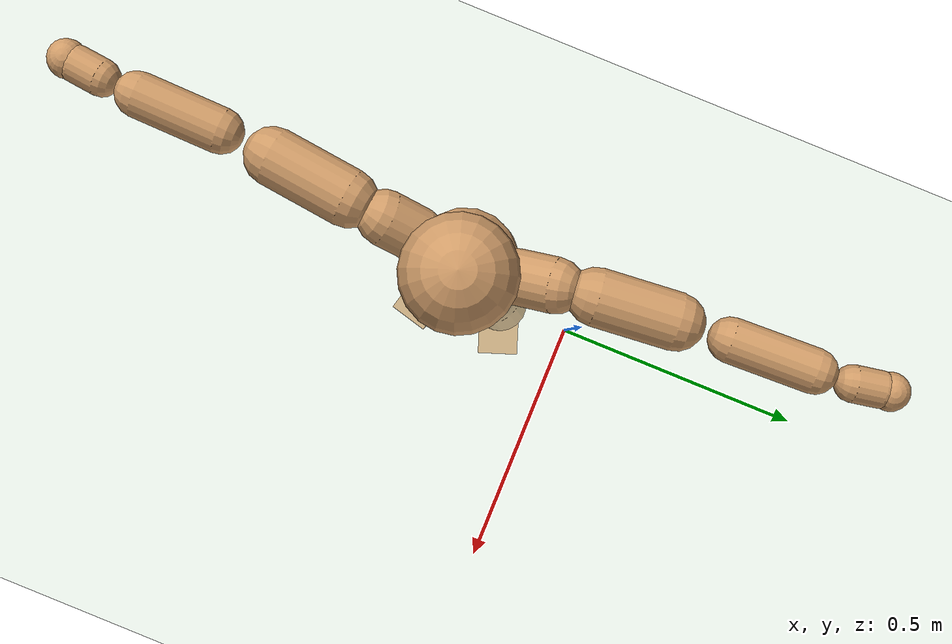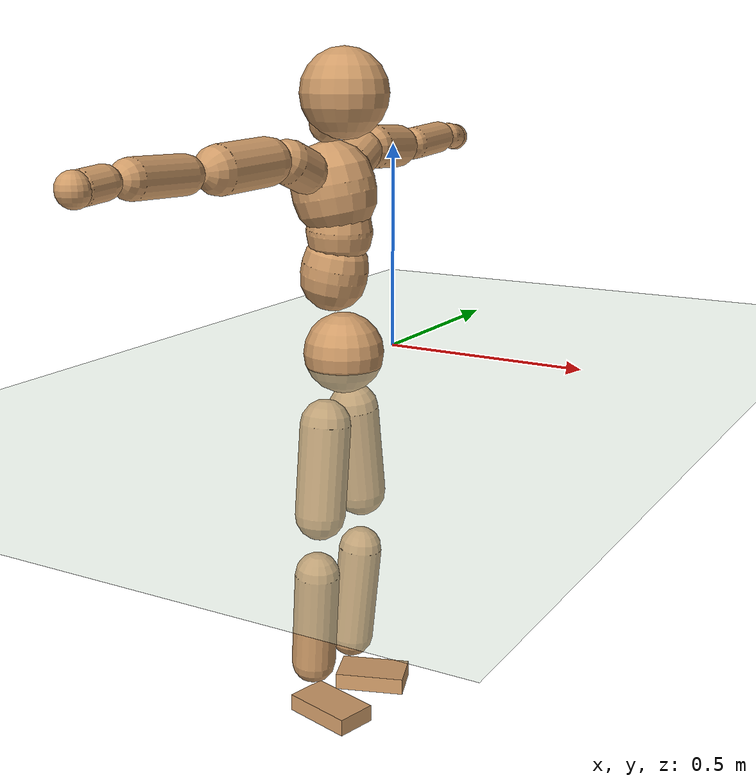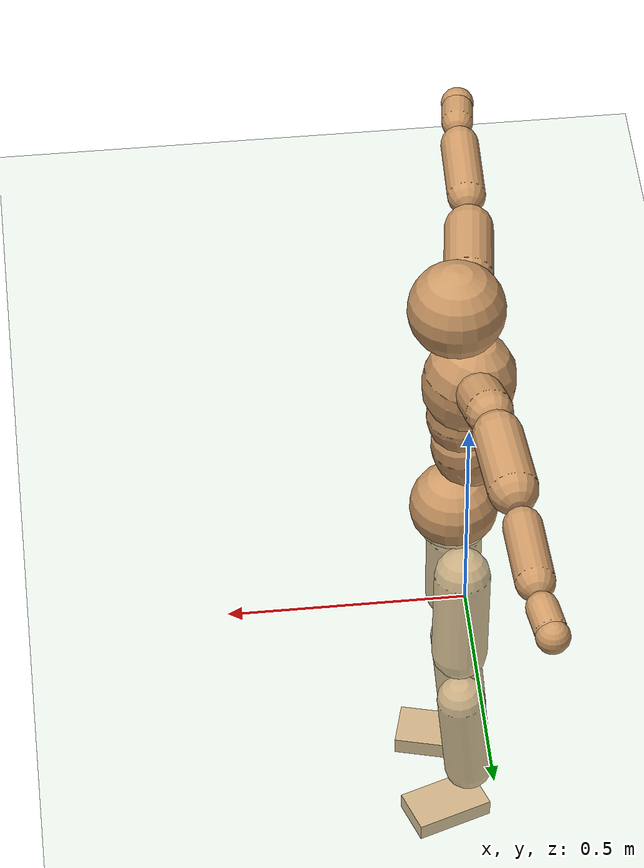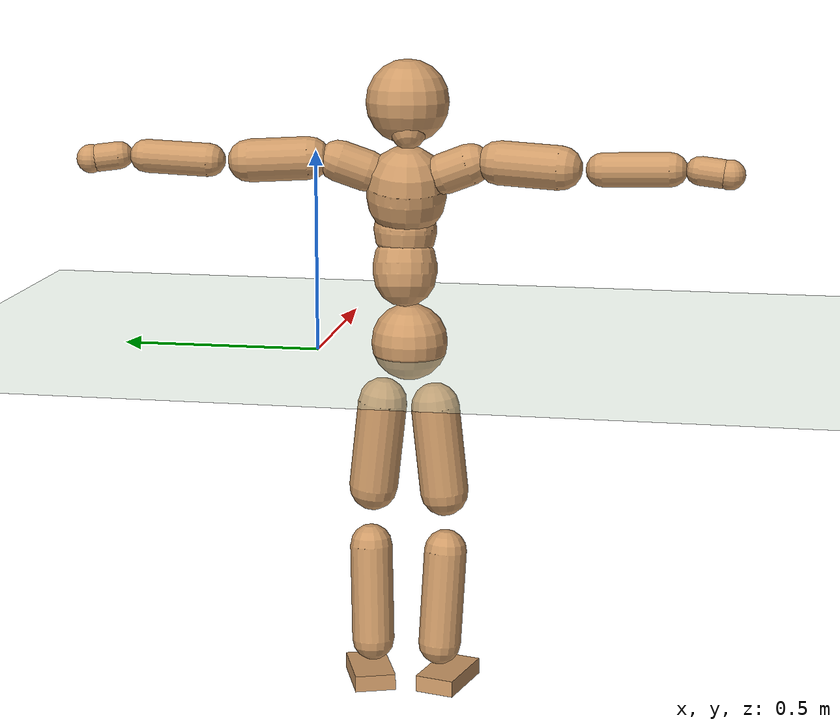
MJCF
<mujoco model="humanoid">
  <compiler coordinate="local"/>
  <default>
    <joint damping="0.0" armature="0.01" stiffness="0.0" limited="true"/>
    <geom conaffinity="1" condim="3" contype="7" margin="0.001" rgba="0.8 0.6 .4 1"/>
  </default>
  <asset>
    <texture type="skybox" builtin="gradient" rgb1=".4 .5 .6" rgb2="0 0 0" width="100" height="100"/>
    <texture builtin="flat" height="1278" mark="cross" markrgb="1 1 1" name="texgeom" random="0.01" rgb1="0.8 0.6 0.4" rgb2="0.8 0.6 0.4" type="cube" width="127"/>
    <texture builtin="checker" height="100" name="texplane" rgb1="0 0 0" rgb2="0.8 0.8 0.8" type="2d" width="100"/>
    <material name="MatPlane" reflectance="0.5" shininess="1" specular="1" texrepeat="60 60" texture="texplane"/>
    <material name="geom" texture="texgeom" texuniform="true"/>
  </asset>
  <worldbody>
    <light cutoff="100" diffuse="1 1 1" dir="-0 0 -1.3" directional="true" exponent="1" pos="0 0 1.3" specular=".1 .1 .1"/>
    <geom conaffinity="1" condim="3" name="floor" pos="0 0 0" rgba="0.8 0.9 0.8 1" size="100 100 .2" type="plane" material="MatPlane"/>
    <body name="Pelvis" pos="-0.0029 -0.2339 0.0309">
      <freejoint name="Pelvis"/>
      <geom type="sphere" contype="1" conaffinity="1" density="500" size="0.0954" pos="0.0000 0.0000 0.0000" name="Pelvis"/>
      <body name="L_Hip" pos="-0.0156 0.0576 -0.08">
        <joint name="L_Hip_x" type="hinge" pos="0 0 0" axis="1 0 0" stiffness="800" damping="80" armature="0.02" range="-180.0000 180.0000"/>
        <joint name="L_Hip_y" type="hinge" pos="0 0 0" axis="0 1 0" stiffness="800" damping="80" armature="0.02" range="-180.0000 180.0000"/>
        <joint name="L_Hip_z" type="hinge" pos="0 0 0" axis="0 0 1" stiffness="800" damping="80" armature="0.02" range="-180.0000 180.0000"/>
        <geom type="capsule" contype="1" conaffinity="1" density="500" fromto="0.0021 0.0083 -0.0741 0.0082 0.0332 -0.2965" size="0.0611" name="L_Hip"/>
        <body name="L_Knee" pos="0.0103 0.0416 -0.3706">
          <joint name="L_Knee_x" type="hinge" pos="0 0 0" axis="1 0 0" stiffness="800" damping="80" armature="0.02" range="-180.0000 180.0000"/>
          <joint name="L_Knee_y" type="hinge" pos="0 0 0" axis="0 1 0" stiffness="800" damping="80" armature="0.02" range="-180.0000 180.0000"/>
          <joint name="L_Knee_z" type="hinge" pos="0 0 0" axis="0 0 1" stiffness="800" damping="80" armature="0.02" range="-180.0000 180.0000"/>
          <geom type="capsule" contype="1" conaffinity="1" density="500" fromto="-0.0072 -0.0029 -0.0817 -0.0286 -0.0114 -0.3270" size="0.0536" name="L_Knee"/>
          <body name="L_Ankle" pos="-0.0358 -0.0143 -0.4087">
            <joint name="L_Ankle_x" type="hinge" pos="0 0 0" axis="1 0 0" stiffness="800" damping="80" armature="0.02" range="-180.0000 180.0000"/>
            <joint name="L_Ankle_y" type="hinge" pos="0 0 0" axis="0 1 0" stiffness="800" damping="80" armature="0.02" range="-180.0000 180.0000"/>
            <joint name="L_Ankle_z" type="hinge" pos="0 0 0" axis="0 0 1" stiffness="800" damping="80" armature="0.02" range="-180.0000 180.0000"/>
            <geom type="box" contype="1" conaffinity="1" density="500" pos="0.0591 0.0208 -0.0291" size="0.0868 0.0517 0.0206" quat="0.9857 0.0000 0.0000 0.1686" name="L_Ankle"/>
            <body name="L_Toe" pos="0.1181 0.0416 -0.0583">
              <joint name="L_Toe_x" type="hinge" pos="0 0 0" axis="1 0 0" stiffness="500" damping="50" armature="0.02" range="-180.0000 180.0000"/>
              <joint name="L_Toe_y" type="hinge" pos="0 0 0" axis="0 1 0" stiffness="500" damping="50" armature="0.02" range="-180.0000 180.0000"/>
              <joint name="L_Toe_z" type="hinge" pos="0 0 0" axis="0 0 1" stiffness="500" damping="50" armature="0.02" range="-180.0000 180.0000"/>
              <geom type="box" contype="1" conaffinity="1" density="500" pos="0.0000 0.0000 0.0283" size="0.0011 0.0025 0.001" quat="0.9849 0.0000 0.0000 0.1733" name="L_Toe"/>
            </body>
          </body>
        </body>
      </body>
      <body name="R_Hip" pos="-0.0108 -0.0588 -0.0884">
        <joint name="R_Hip_x" type="hinge" pos="0 0 0" axis="1 0 0" stiffness="800" damping="80" armature="0.02" range="-180.0000 180.0000"/>
        <joint name="R_Hip_y" type="hinge" pos="0 0 0" axis="0 1 0" stiffness="800" damping="80" armature="0.02" range="-180.0000 180.0000"/>
        <joint name="R_Hip_z" type="hinge" pos="0 0 0" axis="0 0 1" stiffness="800" damping="80" armature="0.02" range="-180.0000 180.0000"/>
        <geom type="capsule" contype="1" conaffinity="1" density="500" fromto="-0.0006 -0.0082 -0.0732 -0.0026 -0.0327 -0.2927" size="0.0604" name="R_Hip"/>
        <body name="R_Knee" pos="-0.0032 -0.0408 -0.3659">
          <joint name="R_Knee_x" type="hinge" pos="0 0 0" axis="1 0 0" stiffness="800" damping="80" armature="0.02" range="-180.0000 180.0000"/>
          <joint name="R_Knee_y" type="hinge" pos="0 0 0" axis="0 1 0" stiffness="800" damping="80" armature="0.02" range="-180.0000 180.0000"/>
          <joint name="R_Knee_z" type="hinge" pos="0 0 0" axis="0 0 1" stiffness="800" damping="80" armature="0.02" range="-180.0000 180.0000"/>
          <geom type="capsule" contype="1" conaffinity="1" density="500" fromto="-0.0068 0.0035 -0.0801 -0.0272 0.0141 -0.3202" size="0.0541" name="R_Knee"/>
          <body name="R_Ankle" pos="-0.034 0.0177 -0.4003">
            <joint name="R_Ankle_x" type="hinge" pos="0 0 0" axis="1 0 0" stiffness="800" damping="80" armature="0.02" range="-180.0000 180.0000"/>
            <joint name="R_Ankle_y" type="hinge" pos="0 0 0" axis="0 1 0" stiffness="800" damping="80" armature="0.02" range="-180.0000 180.0000"/>
            <joint name="R_Ankle_z" type="hinge" pos="0 0 0" axis="0 0 1" stiffness="800" damping="80" armature="0.02" range="-180.0000 180.0000"/>
            <geom type="box" contype="1" conaffinity="1" density="500" pos="0.0635 -0.0165 -0.0290" size="0.0894 0.0503 0.021" quat="0.9919 0.0000 0.0000 -0.1269" name="R_Ankle"/>
            <body name="R_Toe" pos="0.127 -0.033 -0.0581">
              <joint name="R_Toe_x" type="hinge" pos="0 0 0" axis="1 0 0" stiffness="500" damping="50" armature="0.02" range="-180.0000 180.0000"/>
              <joint name="R_Toe_y" type="hinge" pos="0 0 0" axis="0 1 0" stiffness="500" damping="50" armature="0.02" range="-180.0000 180.0000"/>
              <joint name="R_Toe_z" type="hinge" pos="0 0 0" axis="0 0 1" stiffness="500" damping="50" armature="0.02" range="-180.0000 180.0000"/>
              <geom type="box" contype="1" conaffinity="1" density="500" pos="0.0000 0.0000 0.0291" size="0.001 0.0025 0.001" quat="0.9930 0.0000 0.0000 -0.1177" name="R_Toe"/>
            </body>
          </body>
        </body>
      </body>
      <body name="Torso" pos="-0.0407 0.0043 0.1219">
        <joint name="Torso_x" type="hinge" pos="0 0 0" axis="1 0 0" stiffness="1000" damping="100" armature="0.02" range="-180.0000 180.0000"/>
        <joint name="Torso_y" type="hinge" pos="0 0 0" axis="0 1 0" stiffness="1000" damping="100" armature="0.02" range="-180.0000 180.0000"/>
        <joint name="Torso_z" type="hinge" pos="0 0 0" axis="0 0 1" stiffness="1000" damping="100" armature="0.02" range="-180.0000 180.0000"/>
        <geom type="capsule" contype="1" conaffinity="1" density="500" fromto="0.0148 0.0028 0.0804 0.0099 0.0019 0.0536" size="0.0794" name="Torso"/>
        <body name="Spine" pos="0.0247 0.0047 0.134">
          <joint name="Spine_x" type="hinge" pos="0 0 0" axis="1 0 0" stiffness="1000" damping="100" armature="0.02" range="-180.0000 180.0000"/>
          <joint name="Spine_y" type="hinge" pos="0 0 0" axis="0 1 0" stiffness="1000" damping="100" armature="0.02" range="-180.0000 180.0000"/>
          <joint name="Spine_z" type="hinge" pos="0 0 0" axis="0 0 1" stiffness="1000" damping="100" armature="0.02" range="-180.0000 180.0000"/>
          <geom type="capsule" contype="1" conaffinity="1" density="500" fromto="0.0015 -0.0011 0.0326 0.0010 -0.0008 0.0217" size="0.0774" name="Spine"/>
          <body name="Chest" pos="0.0026 -0.0019 0.0543">
            <joint name="Chest_x" type="hinge" pos="0 0 0" axis="1 0 0" stiffness="1000" damping="100" armature="0.02" range="-180.0000 180.0000"/>
            <joint name="Chest_y" type="hinge" pos="0 0 0" axis="0 1 0" stiffness="1000" damping="100" armature="0.02" range="-180.0000 180.0000"/>
            <joint name="Chest_z" type="hinge" pos="0 0 0" axis="0 0 1" stiffness="1000" damping="100" armature="0.02" range="-180.0000 180.0000"/>
            <geom type="capsule" contype="1" conaffinity="1" density="500" fromto="-0.0155 -0.0045 0.0835 -0.0103 -0.0030 0.0557" size="0.0978" name="Chest"/>
            <body name="Neck" pos="-0.0326 -0.0118 0.2004">
              <joint name="Neck_x" type="hinge" pos="0 0 0" axis="1 0 0" stiffness="500" damping="50" armature="0.02" range="-180.0000 180.0000"/>
              <joint name="Neck_y" type="hinge" pos="0 0 0" axis="0 1 0" stiffness="500" damping="50" armature="0.02" range="-180.0000 180.0000"/>
              <joint name="Neck_z" type="hinge" pos="0 0 0" axis="0 0 1" stiffness="500" damping="50" armature="0.02" range="-180.0000 180.0000"/>
              <geom type="capsule" contype="1" conaffinity="1" density="500" fromto="0.0098 0.0021 0.0167 0.0390 0.0083 0.0666" size="0.044" name="Neck"/>
              <body name="Head" pos="0.0488 0.0104 0.0833">
                <joint name="Head_x" type="hinge" pos="0 0 0" axis="1 0 0" stiffness="500" damping="50" armature="0.02" range="-180.0000 180.0000"/>
                <joint name="Head_y" type="hinge" pos="0 0 0" axis="0 1 0" stiffness="500" damping="50" armature="0.02" range="-180.0000 180.0000"/>
                <joint name="Head_z" type="hinge" pos="0 0 0" axis="0 0 1" stiffness="500" damping="50" armature="0.02" range="-180.0000 180.0000"/>
                <geom type="sphere" contype="1" conaffinity="1" density="500" size="0.1025" pos="0.0000 0.0000 0.0000" name="Head"/>
              </body>
            </body>
            <body name="L_Thorax" pos="-0.0203 0.0663 0.1095">
              <joint name="L_Thorax_x" type="hinge" pos="0 0 0" axis="1 0 0" stiffness="500" damping="50" armature="0.02" range="-180.0000 180.0000"/>
              <joint name="L_Thorax_y" type="hinge" pos="0 0 0" axis="0 1 0" stiffness="500" damping="50" armature="0.02" range="-180.0000 180.0000"/>
              <joint name="L_Thorax_z" type="hinge" pos="0 0 0" axis="0 0 1" stiffness="500" damping="50" armature="0.02" range="-180.0000 180.0000"/>
              <geom type="capsule" contype="1" conaffinity="1" density="500" fromto="-0.0035 0.0232 0.0084 -0.0139 0.0927 0.0334" size="0.0504" name="L_Thorax"/>
              <body name="L_Shoulder" pos="-0.0173 0.1159 0.0418">
                <joint name="L_Shoulder_x" type="hinge" pos="0 0 0" axis="1 0 0" stiffness="500" damping="50" armature="0.02" range="-720.0000 720.0000"/>
                <joint name="L_Shoulder_y" type="hinge" pos="0 0 0" axis="0 1 0" stiffness="500" damping="50" armature="0.02" range="-720.0000 720.0000"/>
                <joint name="L_Shoulder_z" type="hinge" pos="0 0 0" axis="0 0 1" stiffness="500" damping="50" armature="0.02" range="-720.0000 720.0000"/>
                <geom type="capsule" contype="1" conaffinity="1" density="500" fromto="-0.0044 0.0485 -0.0025 -0.0178 0.1940 -0.0101" size="0.0526" name="L_Shoulder"/>
                <body name="L_Elbow" pos="-0.0222 0.2425 -0.0127">
                  <joint name="L_Elbow_x" type="hinge" pos="0 0 0" axis="1 0 0" stiffness="500" damping="50" armature="0.02" range="-720.0000 720.0000"/>
                  <joint name="L_Elbow_y" type="hinge" pos="0 0 0" axis="0 1 0" stiffness="500" damping="50" armature="0.02" range="-720.0000 720.0000"/>
                  <joint name="L_Elbow_z" type="hinge" pos="0 0 0" axis="0 0 1" stiffness="500" damping="50" armature="0.02" range="-720.0000 720.0000"/>
                  <geom type="capsule" contype="1" conaffinity="1" density="500" fromto="-0.0016 0.0516 0.0024 -0.0065 0.2065 0.0096" size="0.041" name="L_Elbow"/>
                  <body name="L_Wrist" pos="-0.0081 0.2581 0.0121">
                    <joint name="L_Wrist_x" type="hinge" pos="0 0 0" axis="1 0 0" stiffness="300" damping="30" armature="0.02" range="-180.0000 180.0000"/>
                    <joint name="L_Wrist_y" type="hinge" pos="0 0 0" axis="0 1 0" stiffness="300" damping="30" armature="0.02" range="-180.0000 180.0000"/>
                    <joint name="L_Wrist_z" type="hinge" pos="0 0 0" axis="0 0 1" stiffness="300" damping="30" armature="0.02" range="-180.0000 180.0000"/>
                    <geom type="capsule" contype="1" conaffinity="1" density="500" fromto="-0.0031 0.0171 -0.0021 -0.0124 0.0685 -0.0084" size="0.0336" name="L_Wrist"/>
                    <body name="L_Hand" pos="-0.0154 0.0856 -0.0105">
                      <joint name="L_Hand_x" type="hinge" pos="0 0 0" axis="1 0 0" stiffness="300" damping="30" armature="0.02" range="-180.0000 180.0000"/>
                      <joint name="L_Hand_y" type="hinge" pos="0 0 0" axis="0 1 0" stiffness="300" damping="30" armature="0.02" range="-180.0000 180.0000"/>
                      <joint name="L_Hand_z" type="hinge" pos="0 0 0" axis="0 0 1" stiffness="300" damping="30" armature="0.02" range="-180.0000 180.0000"/>
                      <geom type="sphere" contype="1" conaffinity="1" density="500" size="0.0351" pos="0.0000 0.0000 0.0000" name="L_Hand"/>
                    </body>
                  </body>
                </body>
              </body>
            </body>
            <body name="R_Thorax" pos="-0.0247 -0.0767 0.1076">
              <joint name="R_Thorax_x" type="hinge" pos="0 0 0" axis="1 0 0" stiffness="500" damping="50" armature="0.02" range="-180.0000 180.0000"/>
              <joint name="R_Thorax_y" type="hinge" pos="0 0 0" axis="0 1 0" stiffness="500" damping="50" armature="0.02" range="-180.0000 180.0000"/>
              <joint name="R_Thorax_z" type="hinge" pos="0 0 0" axis="0 0 1" stiffness="500" damping="50" armature="0.02" range="-180.0000 180.0000"/>
              <geom type="capsule" contype="1" conaffinity="1" density="500" fromto="-0.0015 -0.0213 0.0085 -0.0062 -0.0853 0.0339" size="0.0505" name="R_Thorax"/>
              <body name="R_Shoulder" pos="-0.0077 -0.1067 0.0424">
                <joint name="R_Shoulder_x" type="hinge" pos="0 0 0" axis="1 0 0" stiffness="500" damping="50" armature="0.02" range="-720.0000 720.0000"/>
                <joint name="R_Shoulder_y" type="hinge" pos="0 0 0" axis="0 1 0" stiffness="500" damping="50" armature="0.02" range="-720.0000 720.0000"/>
                <joint name="R_Shoulder_z" type="hinge" pos="0 0 0" axis="0 0 1" stiffness="500" damping="50" armature="0.02" range="-720.0000 720.0000"/>
                <geom type="capsule" contype="1" conaffinity="1" density="500" fromto="-0.0060 -0.0496 -0.0023 -0.0239 -0.1985 -0.0091" size="0.0532" name="R_Shoulder"/>
                <body name="R_Elbow" pos="-0.0299 -0.2482 -0.0114">
                  <joint name="R_Elbow_x" type="hinge" pos="0 0 0" axis="1 0 0" stiffness="500" damping="50" armature="0.02" range="-720.0000 720.0000"/>
                  <joint name="R_Elbow_y" type="hinge" pos="0 0 0" axis="0 1 0" stiffness="500" damping="50" armature="0.02" range="-720.0000 720.0000"/>
                  <joint name="R_Elbow_z" type="hinge" pos="0 0 0" axis="0 0 1" stiffness="500" damping="50" armature="0.02" range="-720.0000 720.0000"/>
                  <geom type="capsule" contype="1" conaffinity="1" density="500" fromto="-0.0013 -0.0523 0.0015 -0.0050 -0.2091 0.0060" size="0.0415" name="R_Elbow"/>
                  <body name="R_Wrist" pos="-0.0063 -0.2614 0.0076">
                    <joint name="R_Wrist_x" type="hinge" pos="0 0 0" axis="1 0 0" stiffness="300" damping="30" armature="0.02" range="-180.0000 180.0000"/>
                    <joint name="R_Wrist_y" type="hinge" pos="0 0 0" axis="0 1 0" stiffness="300" damping="30" armature="0.02" range="-180.0000 180.0000"/>
                    <joint name="R_Wrist_z" type="hinge" pos="0 0 0" axis="0 0 1" stiffness="300" damping="30" armature="0.02" range="-180.0000 180.0000"/>
                    <geom type="capsule" contype="1" conaffinity="1" density="500" fromto="-0.0020 -0.0175 -0.0017 -0.0081 -0.0701 -0.0069" size="0.0343" name="R_Wrist"/>
                    <body name="R_Hand" pos="-0.0101 -0.0877 -0.0086">
                      <joint name="R_Hand_x" type="hinge" pos="0 0 0" axis="1 0 0" stiffness="300" damping="30" armature="0.02" range="-180.0000 180.0000"/>
                      <joint name="R_Hand_y" type="hinge" pos="0 0 0" axis="0 1 0" stiffness="300" damping="30" armature="0.02" range="-180.0000 180.0000"/>
                      <joint name="R_Hand_z" type="hinge" pos="0 0 0" axis="0 0 1" stiffness="300" damping="30" armature="0.02" range="-180.0000 180.0000"/>
                      <geom type="sphere" contype="1" conaffinity="1" density="500" size="0.0356" pos="0.0000 0.0000 0.0000" name="R_Hand"/>
                    </body>
                  </body>
                </body>
              </body>
            </body>
          </body>
        </body>
      </body>
    </body>
  </worldbody>
  <actuator>
    <motor name="L_Hip_x" joint="L_Hip_x" gear="500"/>
    <motor name="L_Hip_y" joint="L_Hip_y" gear="500"/>
    <motor name="L_Hip_z" joint="L_Hip_z" gear="500"/>
    <motor name="L_Knee_x" joint="L_Knee_x" gear="500"/>
    <motor name="L_Knee_y" joint="L_Knee_y" gear="500"/>
    <motor name="L_Knee_z" joint="L_Knee_z" gear="500"/>
    <motor name="L_Ankle_x" joint="L_Ankle_x" gear="500"/>
    <motor name="L_Ankle_y" joint="L_Ankle_y" gear="500"/>
    <motor name="L_Ankle_z" joint="L_Ankle_z" gear="500"/>
    <motor name="L_Toe_x" joint="L_Toe_x" gear="500"/>
    <motor name="L_Toe_y" joint="L_Toe_y" gear="500"/>
    <motor name="L_Toe_z" joint="L_Toe_z" gear="500"/>
    <motor name="R_Hip_x" joint="R_Hip_x" gear="500"/>
    <motor name="R_Hip_y" joint="R_Hip_y" gear="500"/>
    <motor name="R_Hip_z" joint="R_Hip_z" gear="500"/>
    <motor name="R_Knee_x" joint="R_Knee_x" gear="500"/>
    <motor name="R_Knee_y" joint="R_Knee_y" gear="500"/>
    <motor name="R_Knee_z" joint="R_Knee_z" gear="500"/>
    <motor name="R_Ankle_x" joint="R_Ankle_x" gear="500"/>
    <motor name="R_Ankle_y" joint="R_Ankle_y" gear="500"/>
    <motor name="R_Ankle_z" joint="R_Ankle_z" gear="500"/>
    <motor name="R_Toe_x" joint="R_Toe_x" gear="500"/>
    <motor name="R_Toe_y" joint="R_Toe_y" gear="500"/>
    <motor name="R_Toe_z" joint="R_Toe_z" gear="500"/>
    <motor name="Torso_x" joint="Torso_x" gear="500"/>
    <motor name="Torso_y" joint="Torso_y" gear="500"/>
    <motor name="Torso_z" joint="Torso_z" gear="500"/>
    <motor name="Spine_x" joint="Spine_x" gear="500"/>
    <motor name="Spine_y" joint="Spine_y" gear="500"/>
    <motor name="Spine_z" joint="Spine_z" gear="500"/>
    <motor name="Chest_x" joint="Chest_x" gear="500"/>
    <motor name="Chest_y" joint="Chest_y" gear="500"/>
    <motor name="Chest_z" joint="Chest_z" gear="500"/>
    <motor name="Neck_x" joint="Neck_x" gear="500"/>
    <motor name="Neck_y" joint="Neck_y" gear="500"/>
    <motor name="Neck_z" joint="Neck_z" gear="500"/>
    <motor name="Head_x" joint="Head_x" gear="500"/>
    <motor name="Head_y" joint="Head_y" gear="500"/>
    <motor name="Head_z" joint="Head_z" gear="500"/>
    <motor name="L_Thorax_x" joint="L_Thorax_x" gear="500"/>
    <motor name="L_Thorax_y" joint="L_Thorax_y" gear="500"/>
    <motor name="L_Thorax_z" joint="L_Thorax_z" gear="500"/>
    <motor name="L_Shoulder_x" joint="L_Shoulder_x" gear="500"/>
    <motor name="L_Shoulder_y" joint="L_Shoulder_y" gear="500"/>
    <motor name="L_Shoulder_z" joint="L_Shoulder_z" gear="500"/>
    <motor name="L_Elbow_x" joint="L_Elbow_x" gear="500"/>
    <motor name="L_Elbow_y" joint="L_Elbow_y" gear="500"/>
    <motor name="L_Elbow_z" joint="L_Elbow_z" gear="500"/>
    <motor name="L_Wrist_x" joint="L_Wrist_x" gear="500"/>
    <motor name="L_Wrist_y" joint="L_Wrist_y" gear="500"/>
    <motor name="L_Wrist_z" joint="L_Wrist_z" gear="500"/>
    <motor name="L_Hand_x" joint="L_Hand_x" gear="500"/>
    <motor name="L_Hand_y" joint="L_Hand_y" gear="500"/>
    <motor name="L_Hand_z" joint="L_Hand_z" gear="500"/>
    <motor name="R_Thorax_x" joint="R_Thorax_x" gear="500"/>
    <motor name="R_Thorax_y" joint="R_Thorax_y" gear="500"/>
    <motor name="R_Thorax_z" joint="R_Thorax_z" gear="500"/>
    <motor name="R_Shoulder_x" joint="R_Shoulder_x" gear="500"/>
    <motor name="R_Shoulder_y" joint="R_Shoulder_y" gear="500"/>
    <motor name="R_Shoulder_z" joint="R_Shoulder_z" gear="500"/>
    <motor name="R_Elbow_x" joint="R_Elbow_x" gear="500"/>
    <motor name="R_Elbow_y" joint="R_Elbow_y" gear="500"/>
    <motor name="R_Elbow_z" joint="R_Elbow_z" gear="500"/>
    <motor name="R_Wrist_x" joint="R_Wrist_x" gear="500"/>
    <motor name="R_Wrist_y" joint="R_Wrist_y" gear="500"/>
    <motor name="R_Wrist_z" joint="R_Wrist_z" gear="500"/>
    <motor name="R_Hand_x" joint="R_Hand_x" gear="500"/>
    <motor name="R_Hand_y" joint="R_Hand_y" gear="500"/>
    <motor name="R_Hand_z" joint="R_Hand_z" gear="500"/>
  </actuator>
  <contact>
    <exclude body1="Torso" body2="Chest"/>
    <exclude body1="Head" body2="Chest"/>
    <exclude body1="R_Knee" body2="R_Toe"/>
    <exclude body1="R_Knee" body2="L_Ankle"/>
    <exclude body1="R_Knee" body2="L_Toe"/>
    <exclude body1="L_Knee" body2="L_Toe"/>
    <exclude body1="L_Knee" body2="R_Ankle"/>
    <exclude body1="L_Knee" body2="R_Toe"/>
    <exclude body1="L_Shoulder" body2="Chest"/>
    <exclude body1="R_Shoulder" body2="Chest"/>
  </contact>
  <sensor/>
  <size njmax="700" nconmax="700"/>
</mujoco>
